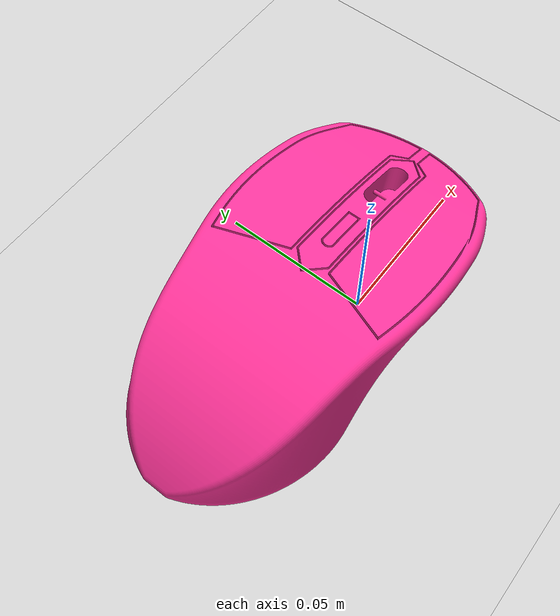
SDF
<?xml version="1.0"?>
<sdf version="1.8">
  <world name="prosty_swiat">

    <plugin filename="gz-sim-physics-system" name="gz::sim::systems::Physics"/>
    <plugin filename="gz-sim-user-commands-system" name="gz::sim::systems::UserCommands"/>
    <plugin filename="gz-sim-scene-broadcaster-system" name="gz::sim::systems::SceneBroadcaster"/>

    <physics name="default_physics" type="ode">
      <max_step_size>0.001</max_step_size>
      <real_time_factor>1.0</real_time_factor>
      <real_time_update_rate>1000</real_time_update_rate>
    </physics>

    <include>
      <uri>https://fuel.gazebosim.org/1.0/OpenRobotics/models/Sun</uri>
    </include>

    <include>
      <uri>https://fuel.gazebosim.org/1.0/OpenRobotics/models/Ground Plane</uri>
    </include>

     <model name="myszka">
      <pose>-0.02 0.005 0.02 0 0 -1.57</pose>
      <link name="myszka_link">

        <inertial>
          <mass>0.09</mass>
          <inertia>
            <ixx>1.006e-03</ixx>
            <ixy>1.7663e-08</ixy>
            <ixz>-2.218e-09</ixz>
            <iyy>3.696e-04</iyy>
            <iyz>1.2939571e-05</iyz>
            <izz>1.235e-03</izz>
          </inertia>
        </inertial>

        <visual name="myszka_visual">
          <geometry>
            <mesh>
              <uri>package://robot_bringup/meshes/mouse.stl</uri>
              <scale>0.001 0.001 0.001</scale>
            </mesh>
          </geometry>
          <material>
            <ambient>1.0 0.4 0.7 1.0</ambient>
            <diffuse>1.0 0.2 0.6 1.0</diffuse>
            <specular>1.0 0.8 0.9 1.0</specular>
          </material>
        </visual>

        <collision name="myszka_collision">
          <geometry>
            <mesh>
              <uri>package://robot_bringup/meshes/mouse.stl</uri>
              <scale>0.001 0.001 0.001</scale>
            </mesh>
          </geometry>
        </collision>

      </link>
    </model>

  </world>
</sdf>
